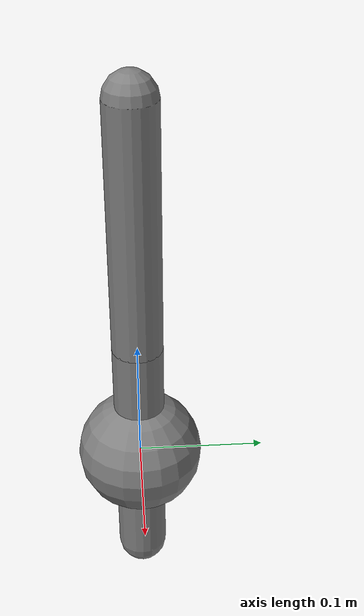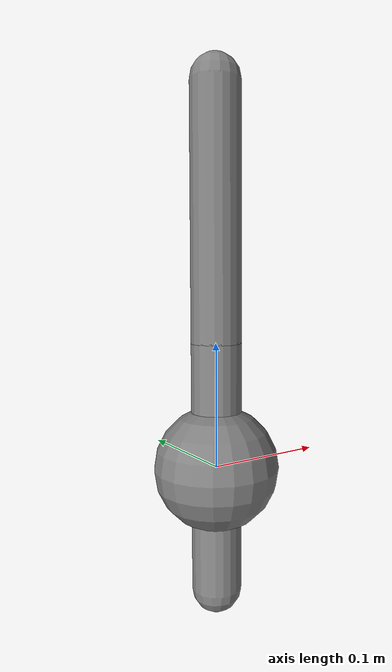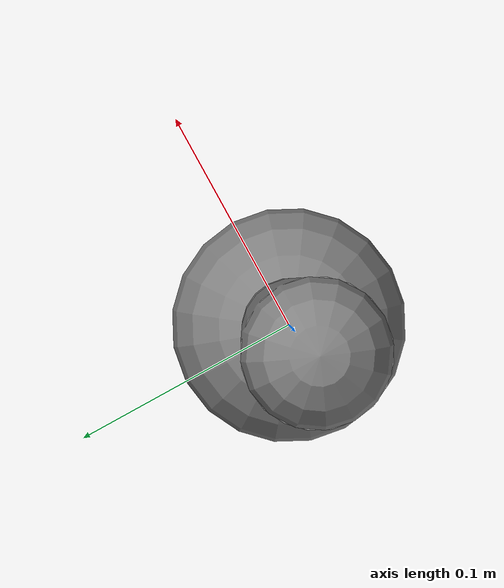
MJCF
<mujoco model="tendon_actuator"><worldbody><body name="base"><geom type="sphere" size="0.05" mass="1"/><body name="segment1"><joint name="j1" type="hinge" axis="0 1 0"/><geom type="capsule" size="0.02 0.1" mass="0.2"/><body name="segment2" pos="0 0 0.2"><joint name="j2" type="hinge" axis="0 1 0"/><geom type="capsule" size="0.02 0.1" mass="0.2"/></body></body></body></worldbody><tendon><fixed name="coupled"><joint joint="j1" coef="1"/><joint joint="j2" coef="0.7"/></fixed></tendon><actuator><motor name="coupled_motor" tendon="coupled" gear="1"/></actuator></mujoco>
